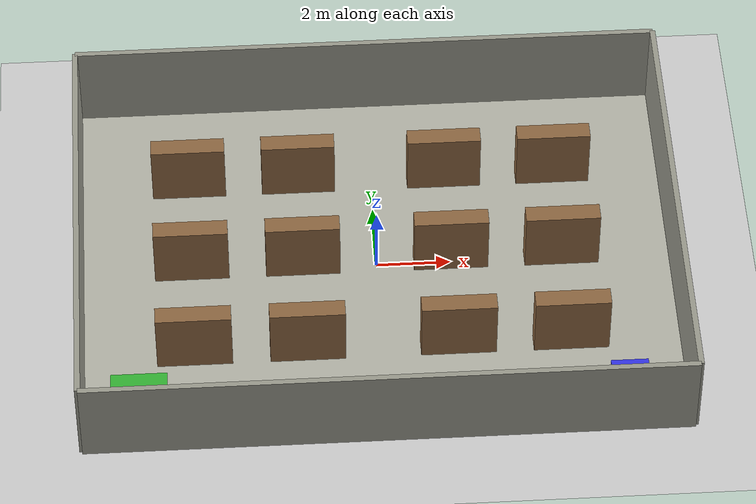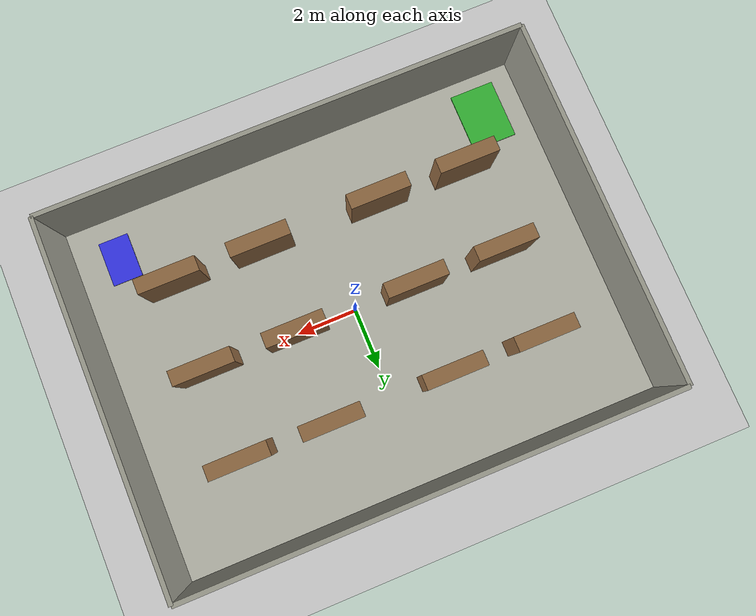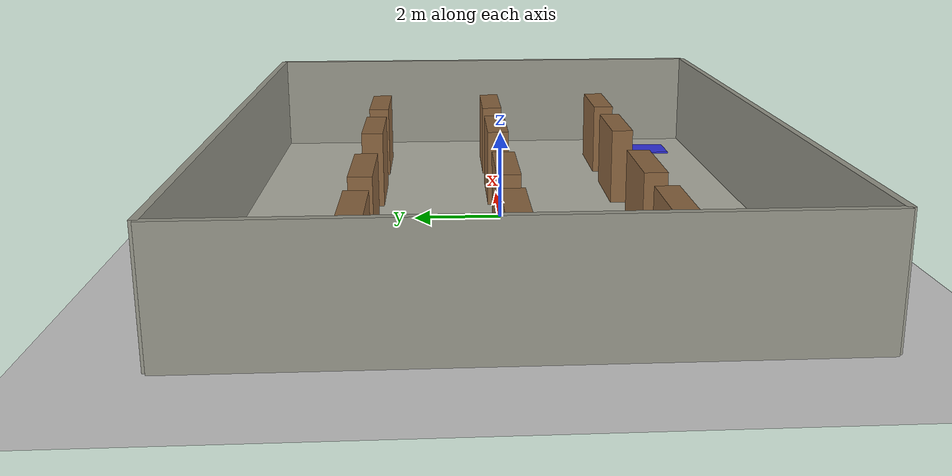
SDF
<?xml version="1.0" ?>
<sdf version="1.6">
  <world name="smart_warehouse">

    <!-- ==================== LIGHTING ==================== -->
    <include>
      <uri>model://sun</uri>
    </include>

    <include>
      <uri>model://ground_plane</uri>
    </include>

    <scene>
      <ambient>0.6 0.6 0.6 1.0</ambient>
      <background>0.9 0.9 0.9 1.0</background>
      <shadows>true</shadows>
    </scene>

    <!-- ==================== FLOOR (warehouse) ==================== -->
    <model name="warehouse_floor">
      <static>true</static>
      <link name="link">
        <collision name="collision">
          <geometry><box><size>16 12 0.01</size></box></geometry>
        </collision>
        <visual name="visual">
          <geometry><box><size>16 12 0.01</size></box></geometry>
          <material>
            <ambient>0.7 0.7 0.65 1</ambient>
            <diffuse>0.7 0.7 0.65 1</diffuse>
          </material>
        </visual>
      </link>
      <pose>0 0 0.005 0 0 0</pose>
    </model>

    <!-- ==================== PERIMETER WALLS ==================== -->
    <!-- North wall -->
    <model name="wall_north">
      <static>true</static>
      <link name="link">
        <collision name="c"><geometry><box><size>16 0.15 2.5</size></box></geometry></collision>
        <visual name="v"><geometry><box><size>16 0.15 2.5</size></box></geometry>
          <material><ambient>0.6 0.6 0.55 1</ambient><diffuse>0.6 0.6 0.55 1</diffuse></material>
        </visual>
      </link>
      <pose>0 6 1.25 0 0 0</pose>
    </model>
    <!-- South wall -->
    <model name="wall_south">
      <static>true</static>
      <link name="link">
        <collision name="c"><geometry><box><size>16 0.15 2.5</size></box></geometry></collision>
        <visual name="v"><geometry><box><size>16 0.15 2.5</size></box></geometry>
          <material><ambient>0.6 0.6 0.55 1</ambient><diffuse>0.6 0.6 0.55 1</diffuse></material>
        </visual>
      </link>
      <pose>0 -6 1.25 0 0 0</pose>
    </model>
    <!-- East wall -->
    <model name="wall_east">
      <static>true</static>
      <link name="link">
        <collision name="c"><geometry><box><size>0.15 12 2.5</size></box></geometry></collision>
        <visual name="v"><geometry><box><size>0.15 12 2.5</size></box></geometry>
          <material><ambient>0.6 0.6 0.55 1</ambient><diffuse>0.6 0.6 0.55 1</diffuse></material>
        </visual>
      </link>
      <pose>8 0 1.25 0 0 0</pose>
    </model>
    <!-- West wall -->
    <model name="wall_west">
      <static>true</static>
      <link name="link">
        <collision name="c"><geometry><box><size>0.15 12 2.5</size></box></geometry></collision>
        <visual name="v"><geometry><box><size>0.15 12 2.5</size></box></geometry>
          <material><ambient>0.6 0.6 0.55 1</ambient><diffuse>0.6 0.6 0.55 1</diffuse></material>
        </visual>
      </link>
      <pose>-8 0 1.25 0 0 0</pose>
    </model>

    <!-- ==================== SHELF ROW A (y=3) ==================== -->
    <model name="shelf_A1">
      <static>true</static>
      <link name="link">
        <collision name="c"><geometry><box><size>2.0 0.5 1.8</size></box></geometry></collision>
        <visual name="v"><geometry><box><size>2.0 0.5 1.8</size></box></geometry>
          <material><ambient>0.45 0.35 0.2 1</ambient><diffuse>0.55 0.4 0.25 1</diffuse></material>
        </visual>
      </link>
      <pose>-5 3 0.9 0 0 0</pose>
    </model>
    <model name="shelf_A2">
      <static>true</static>
      <link name="link">
        <collision name="c"><geometry><box><size>2.0 0.5 1.8</size></box></geometry></collision>
        <visual name="v"><geometry><box><size>2.0 0.5 1.8</size></box></geometry>
          <material><ambient>0.45 0.35 0.2 1</ambient><diffuse>0.55 0.4 0.25 1</diffuse></material>
        </visual>
      </link>
      <pose>-2 3 0.9 0 0 0</pose>
    </model>
    <model name="shelf_A3">
      <static>true</static>
      <link name="link">
        <collision name="c"><geometry><box><size>2.0 0.5 1.8</size></box></geometry></collision>
        <visual name="v"><geometry><box><size>2.0 0.5 1.8</size></box></geometry>
          <material><ambient>0.45 0.35 0.2 1</ambient><diffuse>0.55 0.4 0.25 1</diffuse></material>
        </visual>
      </link>
      <pose>2 3 0.9 0 0 0</pose>
    </model>
    <model name="shelf_A4">
      <static>true</static>
      <link name="link">
        <collision name="c"><geometry><box><size>2.0 0.5 1.8</size></box></geometry></collision>
        <visual name="v"><geometry><box><size>2.0 0.5 1.8</size></box></geometry>
          <material><ambient>0.45 0.35 0.2 1</ambient><diffuse>0.55 0.4 0.25 1</diffuse></material>
        </visual>
      </link>
      <pose>5 3 0.9 0 0 0</pose>
    </model>

    <!-- ==================== SHELF ROW B (y=0) ==================== -->
    <model name="shelf_B1">
      <static>true</static>
      <link name="link">
        <collision name="c"><geometry><box><size>2.0 0.5 1.8</size></box></geometry></collision>
        <visual name="v"><geometry><box><size>2.0 0.5 1.8</size></box></geometry>
          <material><ambient>0.45 0.35 0.2 1</ambient><diffuse>0.55 0.4 0.25 1</diffuse></material>
        </visual>
      </link>
      <pose>-5 0 0.9 0 0 0</pose>
    </model>
    <model name="shelf_B2">
      <static>true</static>
      <link name="link">
        <collision name="c"><geometry><box><size>2.0 0.5 1.8</size></box></geometry></collision>
        <visual name="v"><geometry><box><size>2.0 0.5 1.8</size></box></geometry>
          <material><ambient>0.45 0.35 0.2 1</ambient><diffuse>0.55 0.4 0.25 1</diffuse></material>
        </visual>
      </link>
      <pose>-2 0 0.9 0 0 0</pose>
    </model>
    <model name="shelf_B3">
      <static>true</static>
      <link name="link">
        <collision name="c"><geometry><box><size>2.0 0.5 1.8</size></box></geometry></collision>
        <visual name="v"><geometry><box><size>2.0 0.5 1.8</size></box></geometry>
          <material><ambient>0.45 0.35 0.2 1</ambient><diffuse>0.55 0.4 0.25 1</diffuse></material>
        </visual>
      </link>
      <pose>2 0 0.9 0 0 0</pose>
    </model>
    <model name="shelf_B4">
      <static>true</static>
      <link name="link">
        <collision name="c"><geometry><box><size>2.0 0.5 1.8</size></box></geometry></collision>
        <visual name="v"><geometry><box><size>2.0 0.5 1.8</size></box></geometry>
          <material><ambient>0.45 0.35 0.2 1</ambient><diffuse>0.55 0.4 0.25 1</diffuse></material>
        </visual>
      </link>
      <pose>5 0 0.9 0 0 0</pose>
    </model>

    <!-- ==================== SHELF ROW C (y=-3) ==================== -->
    <model name="shelf_C1">
      <static>true</static>
      <link name="link">
        <collision name="c"><geometry><box><size>2.0 0.5 1.8</size></box></geometry></collision>
        <visual name="v"><geometry><box><size>2.0 0.5 1.8</size></box></geometry>
          <material><ambient>0.45 0.35 0.2 1</ambient><diffuse>0.55 0.4 0.25 1</diffuse></material>
        </visual>
      </link>
      <pose>-5 -3 0.9 0 0 0</pose>
    </model>
    <model name="shelf_C2">
      <static>true</static>
      <link name="link">
        <collision name="c"><geometry><box><size>2.0 0.5 1.8</size></box></geometry></collision>
        <visual name="v"><geometry><box><size>2.0 0.5 1.8</size></box></geometry>
          <material><ambient>0.45 0.35 0.2 1</ambient><diffuse>0.55 0.4 0.25 1</diffuse></material>
        </visual>
      </link>
      <pose>-2 -3 0.9 0 0 0</pose>
    </model>
    <model name="shelf_C3">
      <static>true</static>
      <link name="link">
        <collision name="c"><geometry><box><size>2.0 0.5 1.8</size></box></geometry></collision>
        <visual name="v"><geometry><box><size>2.0 0.5 1.8</size></box></geometry>
          <material><ambient>0.45 0.35 0.2 1</ambient><diffuse>0.55 0.4 0.25 1</diffuse></material>
        </visual>
      </link>
      <pose>2 -3 0.9 0 0 0</pose>
    </model>
    <model name="shelf_C4">
      <static>true</static>
      <link name="link">
        <collision name="c"><geometry><box><size>2.0 0.5 1.8</size></box></geometry></collision>
        <visual name="v"><geometry><box><size>2.0 0.5 1.8</size></box></geometry>
          <material><ambient>0.45 0.35 0.2 1</ambient><diffuse>0.55 0.4 0.25 1</diffuse></material>
        </visual>
      </link>
      <pose>5 -3 0.9 0 0 0</pose>
    </model>

    <!-- ==================== LOADING DOCK (left side) ==================== -->
    <model name="loading_dock">
      <static>true</static>
      <link name="link">
        <collision name="c"><geometry><box><size>1.5 2.0 0.05</size></box></geometry></collision>
        <visual name="v"><geometry><box><size>1.5 2.0 0.05</size></box></geometry>
          <material><ambient>0.2 0.6 0.2 1</ambient><diffuse>0.2 0.7 0.2 1</diffuse></material>
        </visual>
      </link>
      <pose>-6.5 -4.5 0.025 0 0 0</pose>
    </model>

    <!-- ==================== CHARGING STATION (right side) ==================== -->
    <model name="charging_station">
      <static>true</static>
      <link name="link">
        <collision name="c"><geometry><box><size>1.0 1.5 0.05</size></box></geometry></collision>
        <visual name="v"><geometry><box><size>1.0 1.5 0.05</size></box></geometry>
          <material><ambient>0.2 0.2 0.8 1</ambient><diffuse>0.2 0.2 0.9 1</diffuse></material>
        </visual>
      </link>
      <pose>6.5 -4.5 0.025 0 0 0</pose>
    </model>

    <physics type="ode">
      <max_step_size>0.002</max_step_size>
      <real_time_factor>1.0</real_time_factor>
      <real_time_update_rate>500</real_time_update_rate>
    </physics>

  </world>
</sdf>
